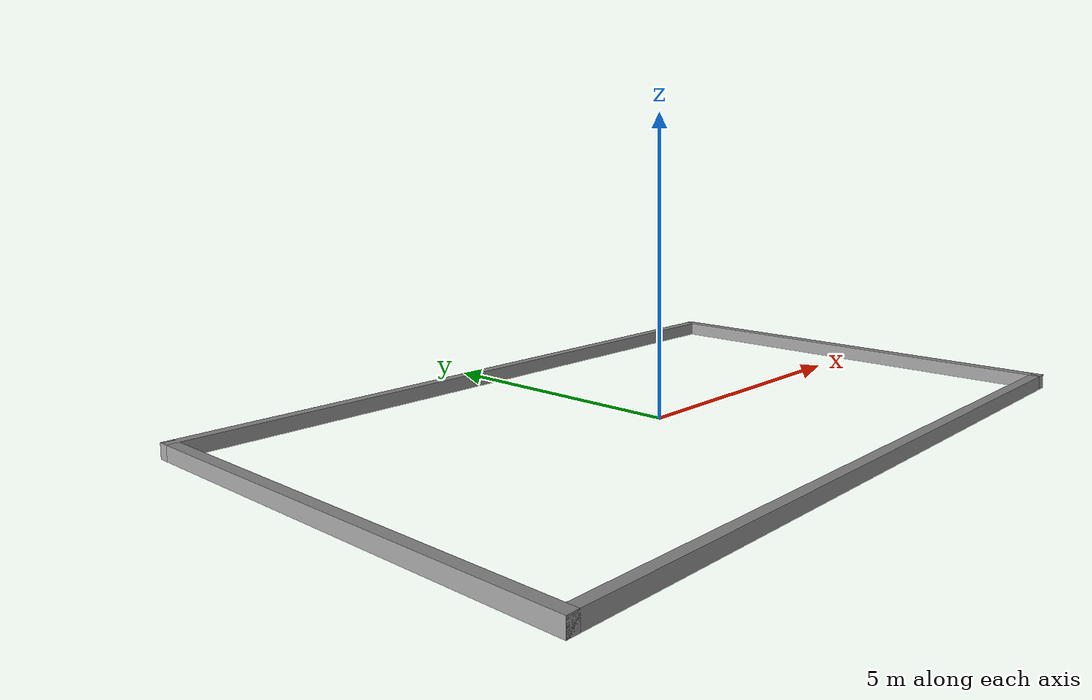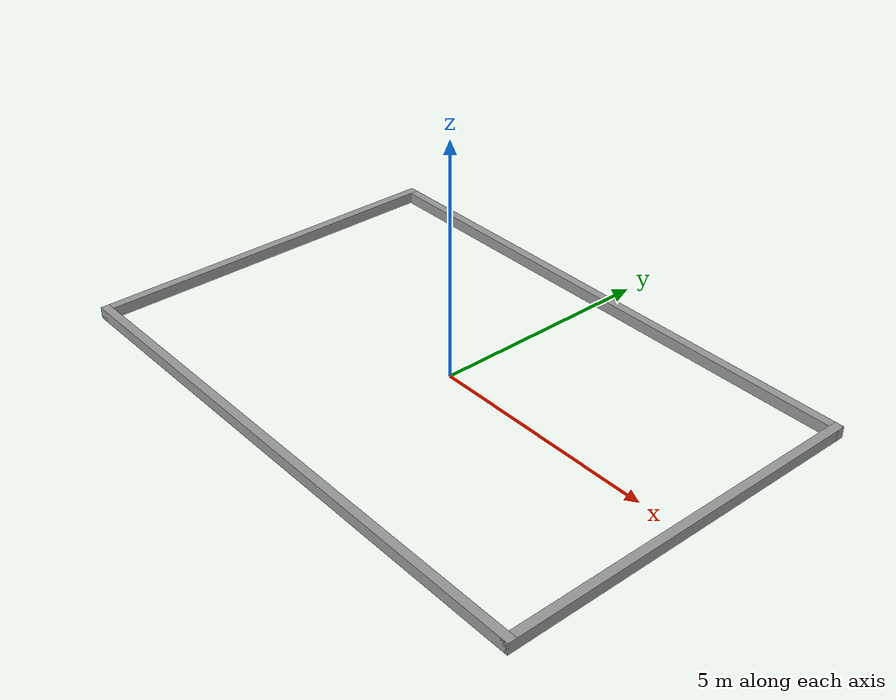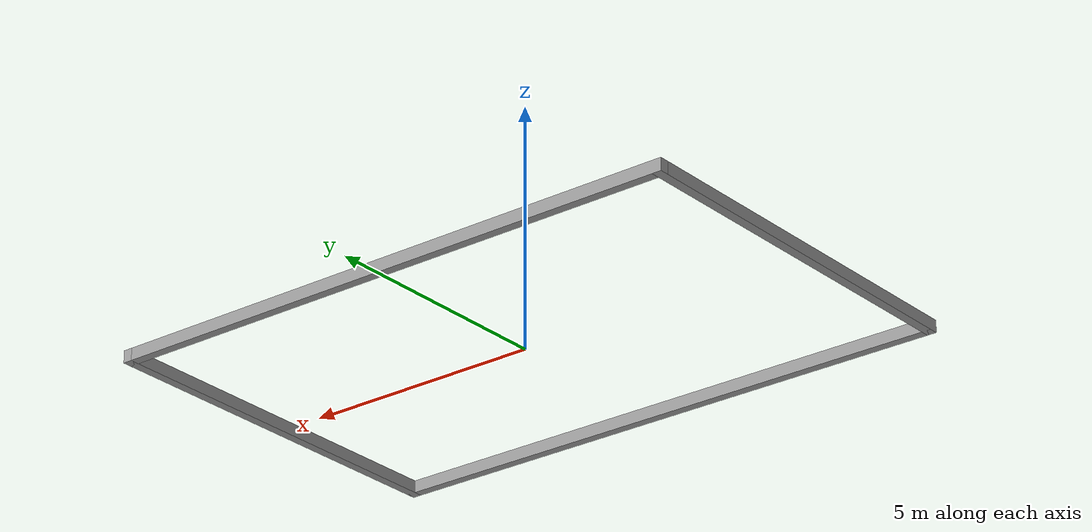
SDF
<?xml version='1.0'?>
<sdf version='1.7'>
  <model name='walls'>
    <pose>-0.065984688 0.032186847 0 0 -0 0</pose>
    <link name='Wall_0'>
      <collision name='Wall_0_Collision'>
        <geometry>
          <box>
            <size>8.25825 0.190575 0.25</size>
          </box>
        </geometry>
        <pose>0 0 0.125 0 -0 0</pose>
      </collision>
      <visual name='Wall_0_Visual'>
        <pose>0 0 0.125 0 -0 0</pose>
        <geometry>
          <box>
            <size>8.25825 0.190575 0.25</size>
          </box>
        </geometry>
        <material>
          <script>
            <uri>file://media/materials/scripts/gazebo.material</uri>
            <name>Gazebo/Grey</name>
          </script>
          <ambient>1 1 1 1</ambient>
        </material>
        <meta>
          <layer>0</layer>
        </meta>
      </visual>
      <pose>-6.0984 0 0 0 -0 -1.5708</pose>
    </link>
    <link name='Wall_2'>
      <collision name='Wall_2_Collision'>
        <geometry>
          <box>
            <size>12.387375 0.190575 0.25</size>
          </box>
        </geometry>
        <pose>0 0 0.125 0 -0 0</pose>
      </collision>
      <visual name='Wall_2_Visual'>
        <pose>0 0 0.125 0 -0 0</pose>
        <geometry>
          <box>
            <size>12.387375 0.190575 0.25</size>
          </box>
        </geometry>
        <material>
          <script>
            <uri>file://media/materials/scripts/gazebo.material</uri>
            <name>Gazebo/Grey</name>
          </script>
          <ambient>1 1 1 1</ambient>
        </material>
        <meta>
          <layer>0</layer>
        </meta>
      </visual>
      <pose>0 -4.0338375 0 0 -0 0</pose>
    </link>
    <link name='Wall_4'>
      <collision name='Wall_4_Collision'>
        <geometry>
          <box>
            <size>8.25825 0.190575 0.25</size>
          </box>
        </geometry>
        <pose>0 0 0.125 0 -0 0</pose>
      </collision>
      <visual name='Wall_4_Visual'>
        <pose>0 0 0.125 0 -0 0</pose>
        <geometry>
          <box>
            <size>8.25825 0.190575 0.25</size>
          </box>
        </geometry>
        <material>
          <script>
            <uri>file://media/materials/scripts/gazebo.material</uri>
            <name>Gazebo/Grey</name>
          </script>
          <ambient>1 1 1 1</ambient>
        </material>
        <meta>
          <layer>0</layer>
        </meta>
      </visual>
      <pose>6.0984 0 0 0 -0 1.5708</pose>
    </link>
    <link name='Wall_5'>
      <collision name='Wall_5_Collision'>
        <geometry>
          <box>
            <size>12.387375 0.190575 0.25</size>
          </box>
        </geometry>
        <pose>0 0 0.125 0 -0 0</pose>
      </collision>
      <visual name='Wall_5_Visual'>
        <pose>0 0 0.125 0 -0 0</pose>
        <geometry>
          <box>
            <size>12.387375 0.190575 0.25</size>
          </box>
        </geometry>
        <material>
          <script>
            <uri>file://media/materials/scripts/gazebo.material</uri>
            <name>Gazebo/Grey</name>
          </script>
          <ambient>1 1 1 1</ambient>
        </material>
        <meta>
          <layer>0</layer>
        </meta>
      </visual>
      <pose>0 4.0338375 0 0 -0 3.14159</pose>
    </link>
    <static>1</static>
  </model>
</sdf>
